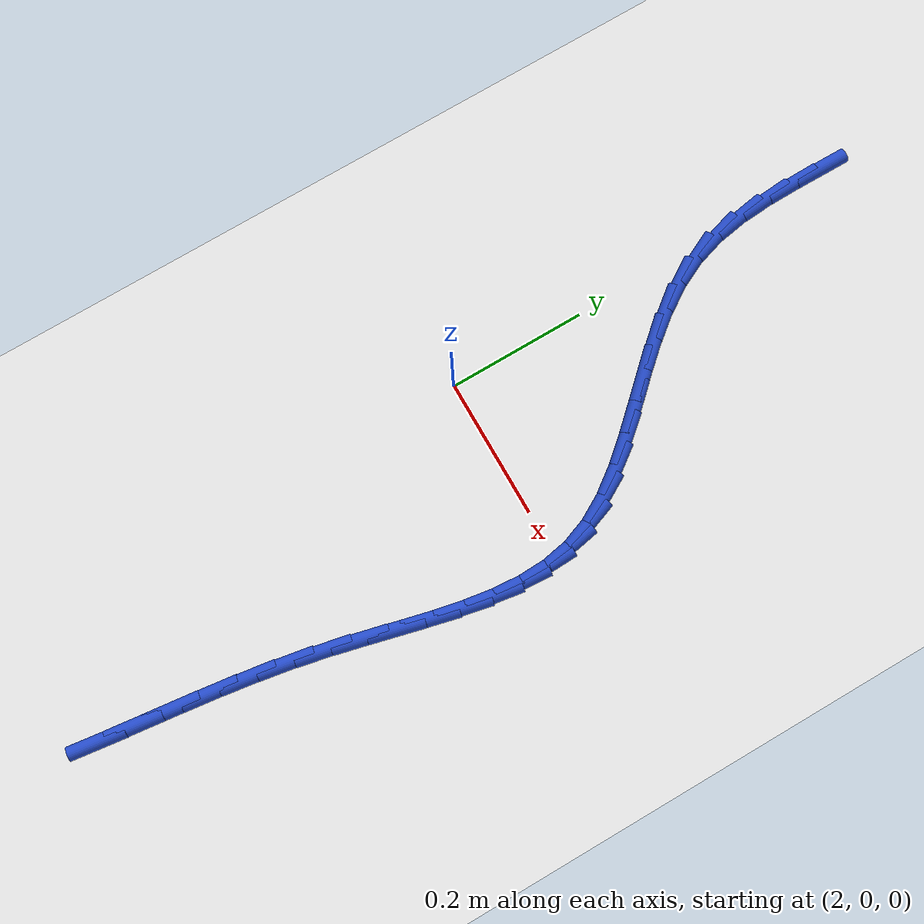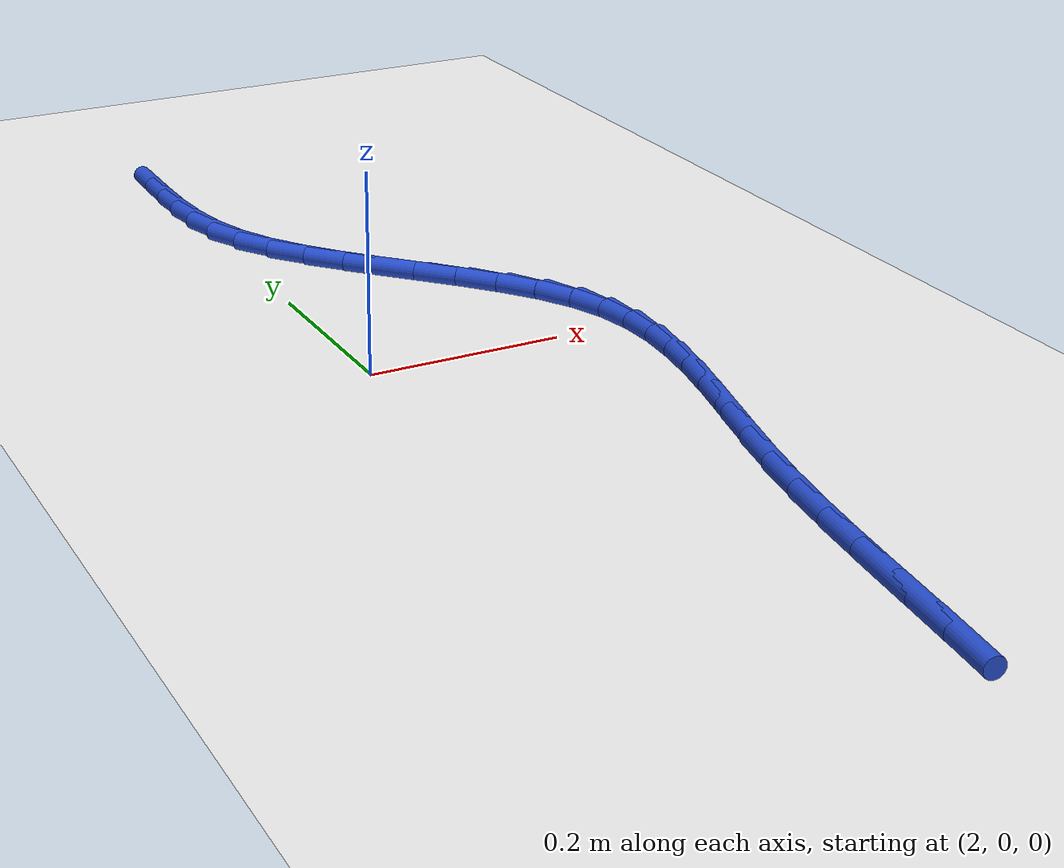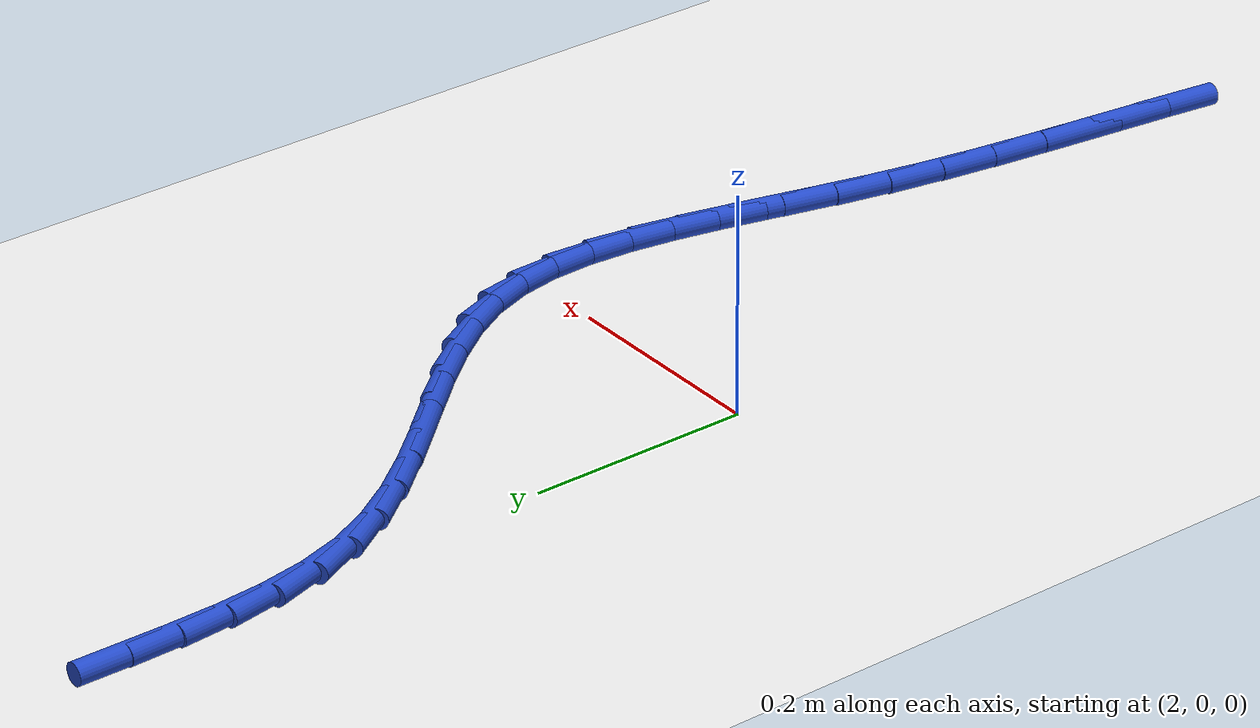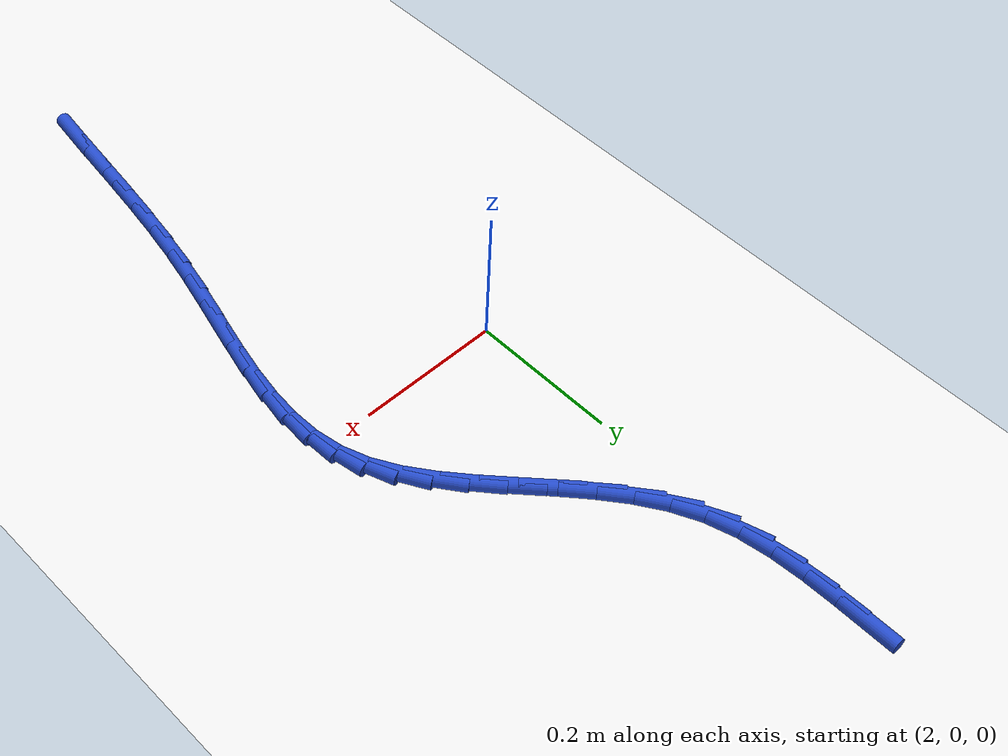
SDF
<sdf version="1.6">
 <world name="default">
  <model name="ground_plane">
   <static>1</static>
   <link name="link">
    <collision name="collision">
     <geometry><plane><normal>0 0 1</normal><size>100 100</size></plane></geometry>
     <surface><friction><ode><mu>100</mu><mu2>50</mu2></ode></friction></surface>
    </collision>
    <visual name="visual">
     <cast_shadows>0</cast_shadows>
     <geometry><plane><normal>0 0 1</normal><size>100 100</size></plane></geometry>
     <material>
      <script><uri>file://media/materials/scripts/gazebo.material</uri><name>Gazebo/WhiteGlow</name></script>
     </material>
    </visual>
   </link>
  </model>
  <model name="line">
   <link name="link_74">
    <pose>1.9906569715717344 0.5935666618089253 0.01 0 1.57 1.5630336068367423</pose>
    <collision name="collision">
     <geometry><cylinder><radius>0.01</radius><length>0.08</length></cylinder></geometry>
    </collision>
    <visual name="visual">
     <material>
      <script><name>Gazebo/Blue</name><uri>file://media/materials/scripts/gazebo.material</uri></script>
     </material>
     <geometry><cylinder><radius>0.01</radius><length>0.08</length></cylinder></geometry>
    </visual>
   </link>
   <link name="link_75">
    <pose>1.9903070591263987 0.5484915568663487 0.01 0 1.57 -1.5523305819873974</pose>
    <collision name="collision">
     <geometry><cylinder><radius>0.01</radius><length>0.08</length></cylinder></geometry>
    </collision>
    <visual name="visual">
     <material>
      <script><name>Gazebo/Blue</name><uri>file://media/materials/scripts/gazebo.material</uri></script>
     </material>
     <geometry><cylinder><radius>0.01</radius><length>0.08</length></cylinder></geometry>
    </visual>
   </link>
   <link name="link_76">
    <pose>1.9911343077944703 0.5036975532426408 0.01 0 1.57 -1.4938672787153076</pose>
    <collision name="collision">
     <geometry><cylinder><radius>0.01</radius><length>0.08</length></cylinder></geometry>
    </collision>
    <visual name="visual">
     <material>
      <script><name>Gazebo/Blue</name><uri>file://media/materials/scripts/gazebo.material</uri></script>
     </material>
     <geometry><cylinder><radius>0.01</radius><length>0.08</length></cylinder></geometry>
    </visual>
   </link>
   <link name="link_77">
    <pose>1.9945274681087735 0.45967693822817557 0.01 0 1.57 -1.400599910378376</pose>
    <collision name="collision">
     <geometry><cylinder><radius>0.01</radius><length>0.08</length></cylinder></geometry>
    </collision>
    <visual name="visual">
     <material>
      <script><name>Gazebo/Blue</name><uri>file://media/materials/scripts/gazebo.material</uri></script>
     </material>
     <geometry><cylinder><radius>0.01</radius><length>0.08</length></cylinder></geometry>
    </visual>
   </link>
   <link name="link_78">
    <pose>2.001875290602131 0.41692199911332845 0.01 0 1.57 -1.270587425750175</pose>
    <collision name="collision">
     <geometry><cylinder><radius>0.01</radius><length>0.08</length></cylinder></geometry>
    </collision>
    <visual name="visual">
     <material>
      <script><name>Gazebo/Blue</name><uri>file://media/materials/scripts/gazebo.material</uri></script>
     </material>
     <geometry><cylinder><radius>0.01</radius><length>0.08</length></cylinder></geometry>
    </visual>
   </link>
   <link name="link_79">
    <pose>2.014566525807367 0.37592502318847354 0.01 0 1.57 -1.1155342573622817</pose>
    <collision name="collision">
     <geometry><cylinder><radius>0.01</radius><length>0.08</length></cylinder></geometry>
    </collision>
    <visual name="visual">
     <material>
      <script><name>Gazebo/Blue</name><uri>file://media/materials/scripts/gazebo.material</uri></script>
     </material>
     <geometry><cylinder><radius>0.01</radius><length>0.08</length></cylinder></geometry>
    </visual>
   </link>
   <link name="link_80">
    <pose>2.0335958968409886 0.33705479488190176 0.01 0 1.57 -0.9866766034194904</pose>
    <collision name="collision">
     <geometry><cylinder><radius>0.01</radius><length>0.08</length></cylinder></geometry>
    </collision>
    <visual name="visual">
     <material>
      <script><name>Gazebo/Blue</name><uri>file://media/materials/scripts/gazebo.material</uri></script>
     </material>
     <geometry><cylinder><radius>0.01</radius><length>0.08</length></cylinder></geometry>
    </visual>
   </link>
   <link name="link_81">
    <pose>2.058039713170704 0.3000787963610054 0.01 0 1.57 -0.896846586519787</pose>
    <collision name="collision">
     <geometry><cylinder><radius>0.01</radius><length>0.08</length></cylinder></geometry>
    </collision>
    <visual name="visual">
     <material>
      <script><name>Gazebo/Blue</name><uri>file://media/materials/scripts/gazebo.material</uri></script>
     </material>
     <geometry><cylinder><radius>0.01</radius><length>0.08</length></cylinder></geometry>
    </visual>
   </link>
   <link name="link_82">
    <pose>2.08639129586091 0.264581779522668 0.01 0 1.57 -0.8418043457936921</pose>
    <collision name="collision">
     <geometry><cylinder><radius>0.01</radius><length>0.08</length></cylinder></geometry>
    </collision>
    <visual name="visual">
     <material>
      <script><name>Gazebo/Blue</name><uri>file://media/materials/scripts/gazebo.material</uri></script>
     </material>
     <geometry><cylinder><radius>0.01</radius><length>0.08</length></cylinder></geometry>
    </visual>
   </link>
   <link name="link_83">
    <pose>2.1171438312799236 0.23014845404500847 0.01 0 1.57 -0.8180657013874502</pose>
    <collision name="collision">
     <geometry><cylinder><radius>0.01</radius><length>0.08</length></cylinder></geometry>
    </collision>
    <visual name="visual">
     <material>
      <script><name>Gazebo/Blue</name><uri>file://media/materials/scripts/gazebo.material</uri></script>
     </material>
     <geometry><cylinder><radius>0.01</radius><length>0.08</length></cylinder></geometry>
    </visual>
   </link>
   <link name="link_84">
    <pose>2.1487905057960646 0.19636352960614678 0.01 0 1.57 -0.8243624385701178</pose>
    <collision name="collision">
     <geometry><cylinder><radius>0.01</radius><length>0.08</length></cylinder></geometry>
    </collision>
    <visual name="visual">
     <material>
      <script><name>Gazebo/Blue</name><uri>file://media/materials/scripts/gazebo.material</uri></script>
     </material>
     <geometry><cylinder><radius>0.01</radius><length>0.08</length></cylinder></geometry>
    </visual>
   </link>
   <link name="link_85">
    <pose>2.1798245057776517 0.16281171588420157 0.01 0 1.57 -0.8621758581553646</pose>
    <collision name="collision">
     <geometry><cylinder><radius>0.01</radius><length>0.08</length></cylinder></geometry>
    </collision>
    <visual name="visual">
     <material>
      <script><name>Gazebo/Blue</name><uri>file://media/materials/scripts/gazebo.material</uri></script>
     </material>
     <geometry><cylinder><radius>0.01</radius><length>0.08</length></cylinder></geometry>
    </visual>
   </link>
   <link name="link_86">
    <pose>2.2087390175930066 0.12907772255729272 0.01 0 1.57 -0.9359330514738584</pose>
    <collision name="collision">
     <geometry><cylinder><radius>0.01</radius><length>0.08</length></cylinder></geometry>
    </collision>
    <visual name="visual">
     <material>
      <script><name>Gazebo/Blue</name><uri>file://media/materials/scripts/gazebo.material</uri></script>
     </material>
     <geometry><cylinder><radius>0.01</radius><length>0.08</length></cylinder></geometry>
    </visual>
   </link>
   <link name="link_87">
    <pose>2.2340272276104463 0.09474625930353911 0.01 0 1.57 -1.052538033385519</pose>
    <collision name="collision">
     <geometry><cylinder><radius>0.01</radius><length>0.08</length></cylinder></geometry>
    </collision>
    <visual name="visual">
     <material>
      <script><name>Gazebo/Blue</name><uri>file://media/materials/scripts/gazebo.material</uri></script>
     </material>
     <geometry><cylinder><radius>0.01</radius><length>0.08</length></cylinder></geometry>
    </visual>
   </link>
   <link name="link_88">
    <pose>2.254182322198291 0.05940203580105975 0.01 0 1.57 -1.2158089335959863</pose>
    <collision name="collision">
     <geometry><cylinder><radius>0.01</radius><length>0.08</length></cylinder></geometry>
    </collision>
    <visual name="visual">
     <material>
      <script><name>Gazebo/Blue</name><uri>file://media/materials/scripts/gazebo.material</uri></script>
     </material>
     <geometry><cylinder><radius>0.01</radius><length>0.08</length></cylinder></geometry>
    </visual>
   </link>
   <link name="link_89">
    <pose>2.267806490008489 0.022648579602100757 0.01 0 1.57 -1.3879255416321785</pose>
    <collision name="collision">
     <geometry><cylinder><radius>0.01</radius><length>0.08</length></cylinder></geometry>
    </collision>
    <visual name="visual">
     <material>
      <script><name>Gazebo/Blue</name><uri>file://media/materials/scripts/gazebo.material</uri></script>
     </material>
     <geometry><cylinder><radius>0.01</radius><length>0.08</length></cylinder></geometry>
    </visual>
   </link>
   <link name="link_90">
    <pose>2.274893087174132 -0.01567041416223968 0.01 0 1.57 -1.5331330112411488</pose>
    <collision name="collision">
     <geometry><cylinder><radius>0.01</radius><length>0.08</length></cylinder></geometry>
    </collision>
    <visual name="visual">
     <material>
      <script><name>Gazebo/Blue</name><uri>file://media/materials/scripts/gazebo.material</uri></script>
     </material>
     <geometry><cylinder><radius>0.01</radius><length>0.08</length></cylinder></geometry>
    </visual>
   </link>
   <link name="link_91">
    <pose>2.276395625327767 -0.055545491582892306 0.01 0 1.57 1.4958749936931706</pose>
    <collision name="collision">
     <geometry><cylinder><radius>0.01</radius><length>0.08</length></cylinder></geometry>
    </collision>
    <visual name="visual">
     <material>
      <script><name>Gazebo/Blue</name><uri>file://media/materials/scripts/gazebo.material</uri></script>
     </material>
     <geometry><cylinder><radius>0.01</radius><length>0.08</length></cylinder></geometry>
    </visual>
   </link>
   <link name="link_92">
    <pose>2.273286683203267 -0.09696390705541552 0.01 0 1.57 1.4149573497830914</pose>
    <collision name="collision">
     <geometry><cylinder><radius>0.01</radius><length>0.08</length></cylinder></geometry>
    </collision>
    <visual name="visual">
     <material>
      <script><name>Gazebo/Blue</name><uri>file://media/materials/scripts/gazebo.material</uri></script>
     </material>
     <geometry><cylinder><radius>0.01</radius><length>0.08</length></cylinder></geometry>
    </visual>
   </link>
   <link name="link_93">
    <pose>2.2665388395345047 -0.13991291497536537 0.01 0 1.57 1.3621650147156534</pose>
    <collision name="collision">
     <geometry><cylinder><radius>0.01</radius><length>0.08</length></cylinder></geometry>
    </collision>
    <visual name="visual">
     <material>
      <script><name>Gazebo/Blue</name><uri>file://media/materials/scripts/gazebo.material</uri></script>
     </material>
     <geometry><cylinder><radius>0.01</radius><length>0.08</length></cylinder></geometry>
    </visual>
   </link>
   <link name="link_94">
    <pose>2.2571246730553516 -0.1843797697383003 0.01 0 1.57 1.3337167171839694</pose>
    <collision name="collision">
     <geometry><cylinder><radius>0.01</radius><length>0.08</length></cylinder></geometry>
    </collision>
    <visual name="visual">
     <material>
      <script><name>Gazebo/Blue</name><uri>file://media/materials/scripts/gazebo.material</uri></script>
     </material>
     <geometry><cylinder><radius>0.01</radius><length>0.08</length></cylinder></geometry>
    </visual>
   </link>
   <link name="link_95">
    <pose>2.2460167624996816 -0.23035172573977802 0.01 0 1.57 1.3265515161869077</pose>
    <collision name="collision">
     <geometry><cylinder><radius>0.01</radius><length>0.08</length></cylinder></geometry>
    </collision>
    <visual name="visual">
     <material>
      <script><name>Gazebo/Blue</name><uri>file://media/materials/scripts/gazebo.material</uri></script>
     </material>
     <geometry><cylinder><radius>0.01</radius><length>0.08</length></cylinder></geometry>
    </visual>
   </link>
   <link name="link_96">
    <pose>2.234187686601366 -0.27781603737535604 0.01 0 1.57 1.338516422092431</pose>
    <collision name="collision">
     <geometry><cylinder><radius>0.01</radius><length>0.08</length></cylinder></geometry>
    </collision>
    <visual name="visual">
     <material>
      <script><name>Gazebo/Blue</name><uri>file://media/materials/scripts/gazebo.material</uri></script>
     </material>
     <geometry><cylinder><radius>0.01</radius><length>0.08</length></cylinder></geometry>
    </visual>
   </link>
   <link name="link_97">
    <pose>2.2226100240942763 -0.3267599590405921 0.01 0 1.57 1.3679861013413066</pose>
    <collision name="collision">
     <geometry><cylinder><radius>0.01</radius><length>0.08</length></cylinder></geometry>
    </collision>
    <visual name="visual">
     <material>
      <script><name>Gazebo/Blue</name><uri>file://media/materials/scripts/gazebo.material</uri></script>
     </material>
     <geometry><cylinder><radius>0.01</radius><length>0.08</length></cylinder></geometry>
    </visual>
   </link>
   <link name="link_98">
    <pose>2.2122445365101817 -0.37716658237858086 0.01 0 1.57 1.403148890108221</pose>
    <collision name="collision">
     <geometry><cylinder><radius>0.01</radius><length>0.08</length></cylinder></geometry>
    </collision>
    <visual name="visual">
     <material>
      <script><name>Gazebo/Blue</name><uri>file://media/materials/scripts/gazebo.material</uri></script>
     </material>
     <geometry><cylinder><radius>0.01</radius><length>0.08</length></cylinder></geometry>
    </visual>
   </link>
   <link name="link_99">
    <pose>2.203502031260834 -0.42882527103759954 0.01 0 1.57 1.4290734386013066</pose>
    <collision name="collision">
     <geometry><cylinder><radius>0.01</radius><length>0.08</length></cylinder></geometry>
    </collision>
    <visual name="visual">
     <material>
      <script><name>Gazebo/Blue</name><uri>file://media/materials/scripts/gazebo.material</uri></script>
     </material>
     <geometry><cylinder><radius>0.01</radius><length>0.08</length></cylinder></geometry>
    </visual>
   </link>
   <link name="link_100">
    <pose>2.196021595778118 -0.4812535409629689 0.01 0 1.57 1.4455039392650897</pose>
    <collision name="collision">
     <geometry><cylinder><radius>0.01</radius><length>0.08</length></cylinder></geometry>
    </collision>
    <visual name="visual">
     <material>
      <script><name>Gazebo/Blue</name><uri>file://media/materials/scripts/gazebo.material</uri></script>
     </material>
     <geometry><cylinder><radius>0.01</radius><length>0.08</length></cylinder></geometry>
    </visual>
   </link>
   <link name="link_101">
    <pose>2.189384545119609 -0.5339485570819462 0.01 0 1.57 1.4529221671284802</pose>
    <collision name="collision">
     <geometry><cylinder><radius>0.01</radius><length>0.08</length></cylinder></geometry>
    </collision>
    <visual name="visual">
     <material>
      <script><name>Gazebo/Blue</name><uri>file://media/materials/scripts/gazebo.material</uri></script>
     </material>
     <geometry><cylinder><radius>0.01</radius><length>0.08</length></cylinder></geometry>
    </visual>
   </link>
   <link name="link_102">
    <pose>2.183172194342886 -0.5864074843217894 0.01 0 1.57 1.4513686312633123</pose>
    <collision name="collision">
     <geometry><cylinder><radius>0.01</radius><length>0.08</length></cylinder></geometry>
    </collision>
    <visual name="visual">
     <material>
      <script><name>Gazebo/Blue</name><uri>file://media/materials/scripts/gazebo.material</uri></script>
     </material>
     <geometry><cylinder><radius>0.01</radius><length>0.08</length></cylinder></geometry>
    </visual>
   </link>
   <link name="link_103">
    <pose>2.1769658585055267 -0.6381274876097566 0.01 0 1.57 1.440414281736076</pose>
    <collision name="collision">
     <geometry><cylinder><radius>0.01</radius><length>0.08</length></cylinder></geometry>
    </collision>
    <visual name="visual">
     <material>
      <script><name>Gazebo/Blue</name><uri>file://media/materials/scripts/gazebo.material</uri></script>
     </material>
     <geometry><cylinder><radius>0.01</radius><length>0.08</length></cylinder></geometry>
    </visual>
   </link>
  </model>
 </world>
</sdf>
